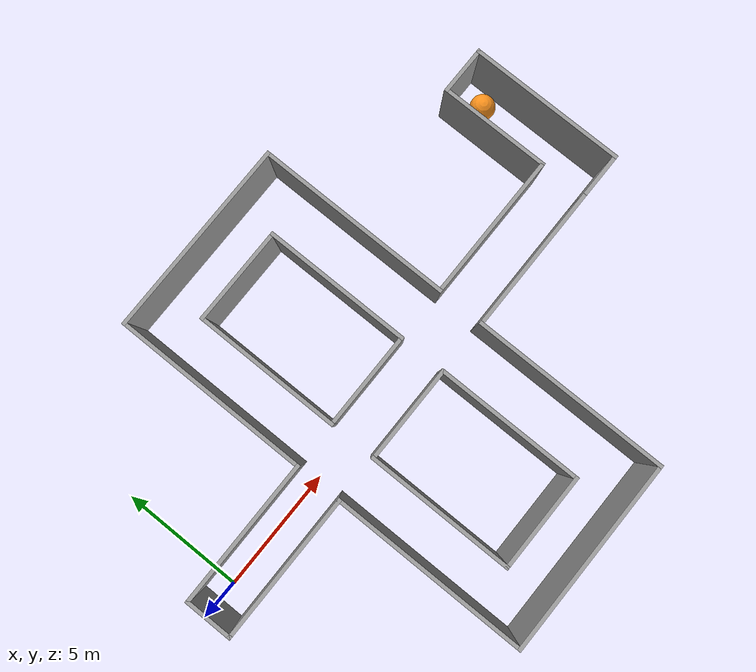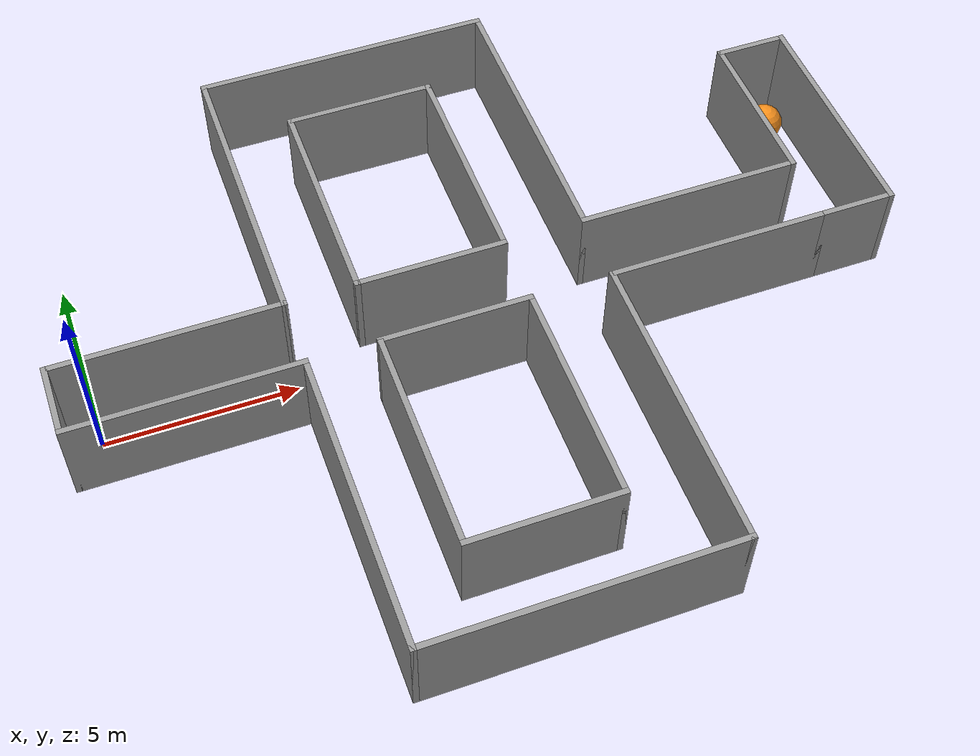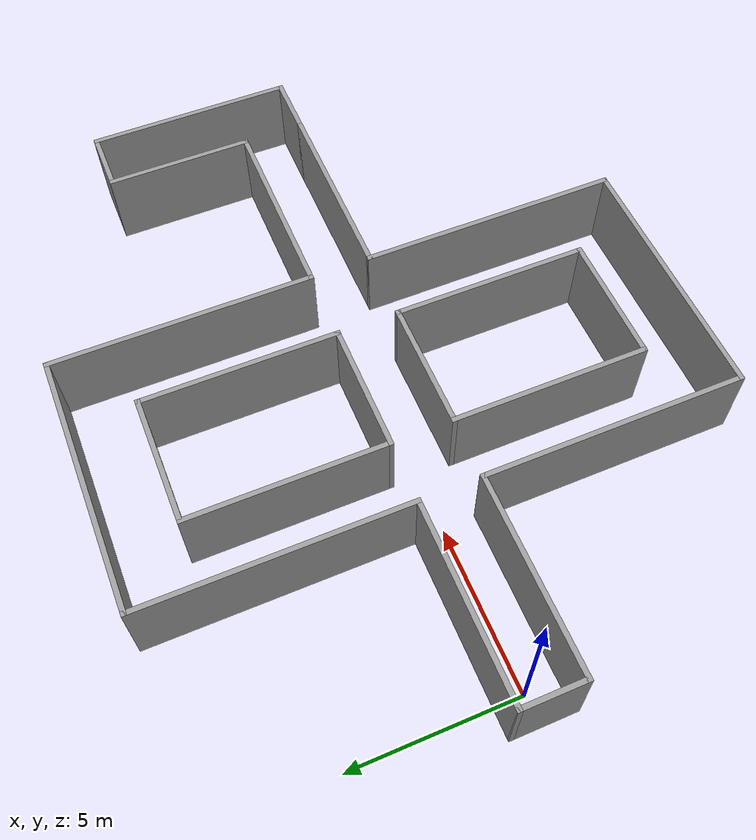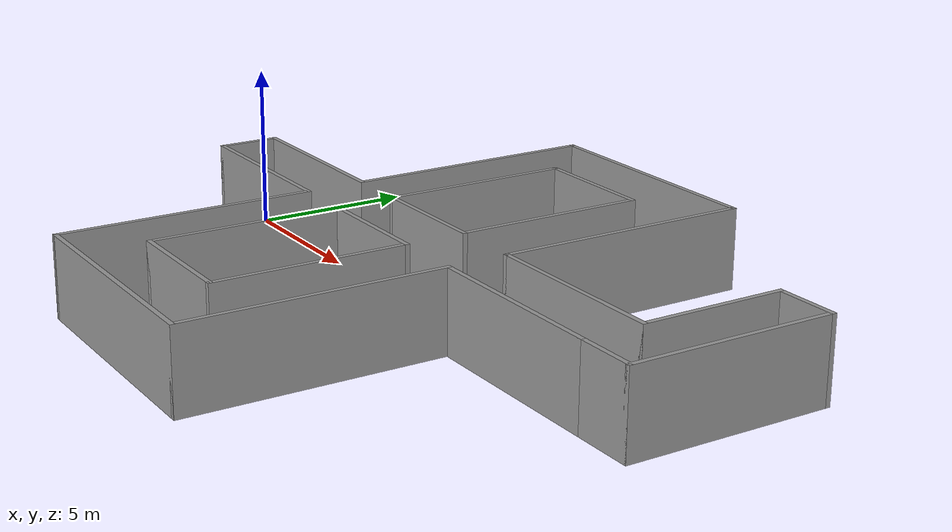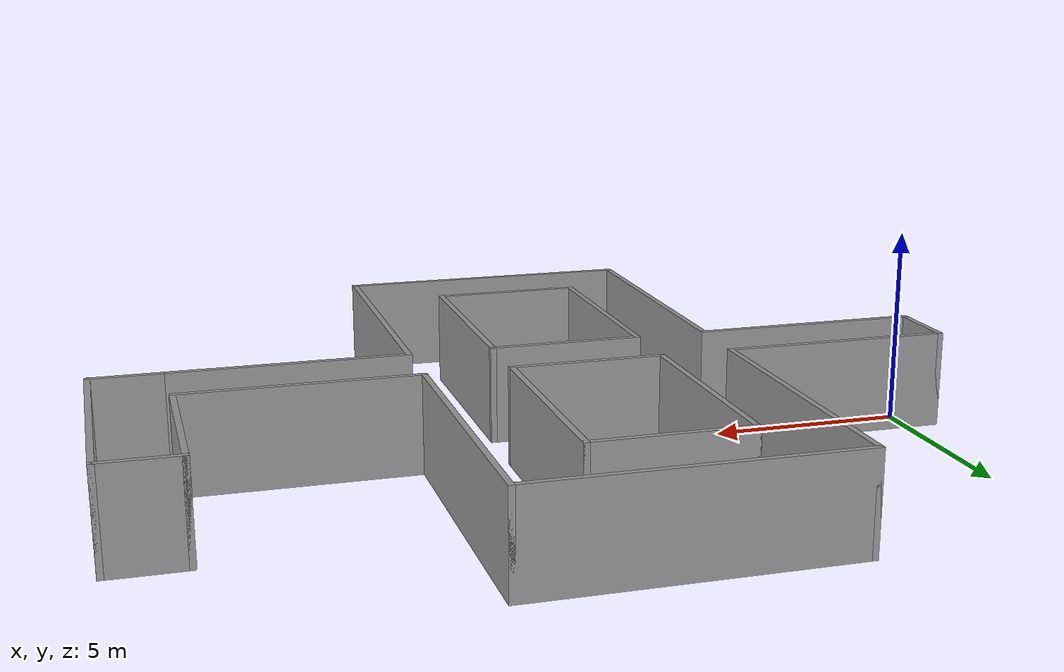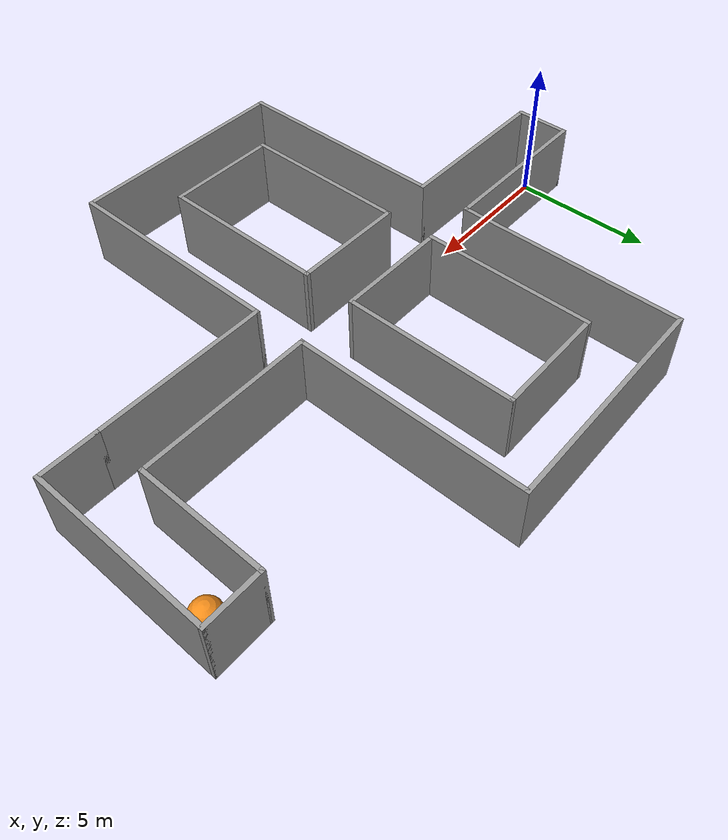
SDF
<sdf version="1.6">
 <world name="default">
  <model name="maze_2">
   <pose>9.89 -0.125 0 0 -0 0</pose>
   <link name="Wall_14">
    <collision name="Wall_14_Collision">
     <geometry><box><size>6 0.15 2.5</size></box></geometry>
     <pose>0 0 1.25 0 -0 0</pose>
    </collision>
    <visual name="Wall_14_Visual">
     <pose>0 0 1.25 0 -0 0</pose>
     <geometry><box><size>6 0.15 2.5</size></box></geometry>
     <material>
      <script><uri>file://media/materials/scripts/gazebo.material</uri><name>Gazebo/Grey</name></script>
      <ambient>1 1 1 1</ambient>
     </material>
    </visual>
    <pose>-7.775 0.925 0 0 -0 0</pose>
   </link>
   <link name="Wall_17">
    <collision name="Wall_17_Collision">
     <geometry><box><size>8 0.15 2.5</size></box></geometry>
     <pose>0 0 1.25 0 -0 0</pose>
    </collision>
    <visual name="Wall_17_Visual">
     <pose>0 0 1.25 0 -0 0</pose>
     <geometry><box><size>8 0.15 2.5</size></box></geometry>
     <material>
      <script><uri>file://media/materials/scripts/gazebo.material</uri><name>Gazebo/Grey</name></script>
      <ambient>1 1 1 1</ambient>
     </material>
    </visual>
    <pose>-4.85 4.85 0 0 -0 1.5708</pose>
   </link>
   <link name="Wall_18">
    <collision name="Wall_18_Collision">
     <geometry><box><size>8 0.15 2.5</size></box></geometry>
     <pose>0 0 1.25 0 -0 0</pose>
    </collision>
    <visual name="Wall_18_Visual">
     <pose>0 0 1.25 0 -0 0</pose>
     <geometry><box><size>8 0.15 2.5</size></box></geometry>
     <material>
      <script><uri>file://media/materials/scripts/gazebo.material</uri><name>Gazebo/Grey</name></script>
      <ambient>1 1 1 1</ambient>
     </material>
    </visual>
    <pose>-0.925 8.775 0 0 -0 0</pose>
   </link>
   <link name="Wall_19">
    <collision name="Wall_19_Collision">
     <geometry><box><size>8 0.15 2.5</size></box></geometry>
     <pose>0 0 1.25 0 -0 0</pose>
    </collision>
    <visual name="Wall_19_Visual">
     <pose>0 0 1.25 0 -0 0</pose>
     <geometry><box><size>8 0.15 2.5</size></box></geometry>
     <material>
      <script><uri>file://media/materials/scripts/gazebo.material</uri><name>Gazebo/Grey</name></script>
      <ambient>1 1 1 1</ambient>
     </material>
    </visual>
    <pose>3 4.85 0 0 0 -1.5708</pose>
   </link>
   <link name="Wall_20">
    <collision name="Wall_20_Collision">
     <geometry><box><size>6 0.15 2.5</size></box></geometry>
     <pose>0 0 1.25 0 -0 0</pose>
    </collision>
    <visual name="Wall_20_Visual">
     <pose>0 0 1.25 0 -0 0</pose>
     <geometry><box><size>6 0.15 2.5</size></box></geometry>
     <material>
      <script><uri>file://media/materials/scripts/gazebo.material</uri><name>Gazebo/Grey</name></script>
      <ambient>1 1 1 1</ambient>
     </material>
    </visual>
    <pose>5.925 0.925 0 0 -0 0</pose>
   </link>
   <link name="Wall_21">
    <collision name="Wall_21_Collision">
     <geometry><box><size>4.5 0.15 2.5</size></box></geometry>
     <pose>0 0 1.25 0 -0 0</pose>
    </collision>
    <visual name="Wall_21_Visual">
     <pose>0 0 1.25 0 -0 0</pose>
     <geometry><box><size>4.5 0.15 2.5</size></box></geometry>
     <material>
      <script><uri>file://media/materials/scripts/gazebo.material</uri><name>Gazebo/Grey</name></script>
      <ambient>1 1 1 1</ambient>
     </material>
    </visual>
    <pose>8.85 3.1 0 0 -0 1.5708</pose>
   </link>
   <link name="Wall_22">
    <collision name="Wall_22_Collision">
     <geometry><box><size>2 0.15 2.5</size></box></geometry>
     <pose>0 0 1.25 0 -0 0</pose>
    </collision>
    <visual name="Wall_22_Visual">
     <pose>0 0 1.25 0 -0 0</pose>
     <geometry><box><size>2 0.15 2.5</size></box></geometry>
     <material>
      <script><uri>file://media/materials/scripts/gazebo.material</uri><name>Gazebo/Grey</name></script>
      <ambient>1 1 1 1</ambient>
     </material>
    </visual>
    <pose>9.775 5.275 0 0 -0 0</pose>
   </link>
   <link name="Wall_30">
    <collision name="Wall_30_Collision">
     <geometry><box><size>2 0.15 2.5</size></box></geometry>
     <pose>0 0 1.25 0 -0 0</pose>
    </collision>
    <visual name="Wall_30_Visual">
     <pose>0 0 1.25 0 -0 0</pose>
     <geometry><box><size>2 0.15 2.5</size></box></geometry>
     <material>
      <script><uri>file://media/materials/scripts/gazebo.material</uri><name>Gazebo/Grey</name></script>
      <ambient>1 1 1 1</ambient>
     </material>
    </visual>
    <pose>-10.7 0 0 0 0 -1.5708</pose>
   </link>
   <link name="Wall_32">
    <collision name="Wall_32_Collision">
     <geometry><box><size>6 0.15 2.5</size></box></geometry>
     <pose>0 0 1.25 0 -0 0</pose>
    </collision>
    <visual name="Wall_32_Visual">
     <pose>0 0 1.25 0 -0 0</pose>
     <geometry><box><size>6 0.15 2.5</size></box></geometry>
     <material>
      <script><uri>file://media/materials/scripts/gazebo.material</uri><name>Gazebo/Grey</name></script>
      <ambient>1 1 1 1</ambient>
     </material>
    </visual>
    <pose>-7.775 -0.925 0 0 -0 0</pose>
   </link>
   <link name="Wall_34">
    <collision name="Wall_34_Collision">
     <geometry><box><size>8 0.15 2.5</size></box></geometry>
     <pose>0 0 1.25 0 -0 0</pose>
    </collision>
    <visual name="Wall_34_Visual">
     <pose>0 0 1.25 0 -0 0</pose>
     <geometry><box><size>8 0.15 2.5</size></box></geometry>
     <material>
      <script><uri>file://media/materials/scripts/gazebo.material</uri><name>Gazebo/Grey</name></script>
      <ambient>1 1 1 1</ambient>
     </material>
    </visual>
    <pose>-4.85 -4.85 0 0 0 -1.5708</pose>
   </link>
   <link name="Wall_36">
    <collision name="Wall_36_Collision">
     <geometry><box><size>8 0.15 2.5</size></box></geometry>
     <pose>0 0 1.25 0 -0 0</pose>
    </collision>
    <visual name="Wall_36_Visual">
     <pose>0 0 1.25 0 -0 0</pose>
     <geometry><box><size>8 0.15 2.5</size></box></geometry>
     <material>
      <script><uri>file://media/materials/scripts/gazebo.material</uri><name>Gazebo/Grey</name></script>
      <ambient>1 1 1 1</ambient>
     </material>
    </visual>
    <pose>-0.925 -8.775 0 0 -0 0</pose>
   </link>
   <link name="Wall_37">
    <collision name="Wall_37_Collision">
     <geometry><box><size>8 0.15 2.5</size></box></geometry>
     <pose>0 0 1.25 0 -0 0</pose>
    </collision>
    <visual name="Wall_37_Visual">
     <pose>0 0 1.25 0 -0 0</pose>
     <geometry><box><size>8 0.15 2.5</size></box></geometry>
     <material>
      <script><uri>file://media/materials/scripts/gazebo.material</uri><name>Gazebo/Grey</name></script>
      <ambient>1 1 1 1</ambient>
     </material>
    </visual>
    <pose>3 -4.85 0 0 -0 1.5708</pose>
   </link>
   <link name="Wall_39">
    <collision name="Wall_39_Collision">
     <geometry><box><size>6 0.15 2.5</size></box></geometry>
     <pose>0 0 1.25 0 -0 0</pose>
    </collision>
    <visual name="Wall_39_Visual">
     <pose>0 0 1.25 0 -0 0</pose>
     <geometry><box><size>6 0.15 2.5</size></box></geometry>
     <material>
      <script><uri>file://media/materials/scripts/gazebo.material</uri><name>Gazebo/Grey</name></script>
      <ambient>1 1 1 1</ambient>
     </material>
    </visual>
    <pose>5.925 -0.925 0 0 -0 0</pose>
   </link>
   <link name="Wall_43">
    <collision name="Wall_43_Collision">
     <geometry><box><size>2 0.15 2.5</size></box></geometry>
     <pose>0 0 1.25 0 -0 0</pose>
    </collision>
    <visual name="Wall_43_Visual">
     <pose>0 0 1.25 0 -0 0</pose>
     <geometry><box><size>2 0.15 2.5</size></box></geometry>
     <material>
      <script><uri>file://media/materials/scripts/gazebo.material</uri><name>Gazebo/Grey</name></script>
      <ambient>1 1 1 1</ambient>
     </material>
    </visual>
    <pose>9.775 -0.925 0 0 -0 0</pose>
   </link>
   <link name="Wall_44">
    <collision name="Wall_44_Collision">
     <geometry><box><size>6.35 0.15 2.5</size></box></geometry>
     <pose>0 0 1.25 0 -0 0</pose>
    </collision>
    <visual name="Wall_44_Visual">
     <pose>0 0 1.25 0 -0 0</pose>
     <geometry><box><size>6.35 0.15 2.5</size></box></geometry>
     <material>
      <script><uri>file://media/materials/scripts/gazebo.material</uri><name>Gazebo/Grey</name></script>
      <ambient>1 1 1 1</ambient>
     </material>
    </visual>
    <pose>10.7 2.175 0 0 -0 1.5708</pose>
   </link>
   <link name="Wall_47">
    <collision name="Wall_47_Collision">
     <geometry><box><size>6 0.15 2.5</size></box></geometry>
     <pose>0 0 1.25 0 -0 0</pose>
    </collision>
    <visual name="Wall_47_Visual">
     <pose>0 0 1.25 0 -0 0</pose>
     <geometry><box><size>6 0.15 2.5</size></box></geometry>
     <material>
      <script><uri>file://media/materials/scripts/gazebo.material</uri><name>Gazebo/Grey</name></script>
      <ambient>1 1 1 1</ambient>
     </material>
    </visual>
    <pose>-3 3.85 0 0 -0 1.5708</pose>
   </link>
   <link name="Wall_48">
    <collision name="Wall_48_Collision">
     <geometry><box><size>4 0.15 2.5</size></box></geometry>
     <pose>0 0 1.25 0 -0 0</pose>
    </collision>
    <visual name="Wall_48_Visual">
     <pose>0 0 1.25 0 -0 0</pose>
     <geometry><box><size>4 0.15 2.5</size></box></geometry>
     <material>
      <script><uri>file://media/materials/scripts/gazebo.material</uri><name>Gazebo/Grey</name></script>
      <ambient>1 1 1 1</ambient>
     </material>
    </visual>
    <pose>-1.075 6.775 0 0 -0 0</pose>
   </link>
   <link name="Wall_49">
    <collision name="Wall_49_Collision">
     <geometry><box><size>6 0.15 2.5</size></box></geometry>
     <pose>0 0 1.25 0 -0 0</pose>
    </collision>
    <visual name="Wall_49_Visual">
     <pose>0 0 1.25 0 -0 0</pose>
     <geometry><box><size>6 0.15 2.5</size></box></geometry>
     <material>
      <script><uri>file://media/materials/scripts/gazebo.material</uri><name>Gazebo/Grey</name></script>
      <ambient>1 1 1 1</ambient>
     </material>
    </visual>
    <pose>0.849999 3.85 0 0 0 -1.5708</pose>
   </link>
   <link name="Wall_50">
    <collision name="Wall_50_Collision">
     <geometry><box><size>4 0.15 2.5</size></box></geometry>
     <pose>0 0 1.25 0 -0 0</pose>
    </collision>
    <visual name="Wall_50_Visual">
     <pose>0 0 1.25 0 -0 0</pose>
     <geometry><box><size>4 0.15 2.5</size></box></geometry>
     <material>
      <script><uri>file://media/materials/scripts/gazebo.material</uri><name>Gazebo/Grey</name></script>
      <ambient>1 1 1 1</ambient>
     </material>
    </visual>
    <pose>-1.075 0.925 0 0 -0 3.14159</pose>
   </link>
   <link name="Wall_53">
    <collision name="Wall_53_Collision">
     <geometry><box><size>6 0.15 2.5</size></box></geometry>
     <pose>0 0 1.25 0 -0 0</pose>
    </collision>
    <visual name="Wall_53_Visual">
     <pose>0 0 1.25 0 -0 0</pose>
     <geometry><box><size>6 0.15 2.5</size></box></geometry>
     <material>
      <script><uri>file://media/materials/scripts/gazebo.material</uri><name>Gazebo/Grey</name></script>
      <ambient>1 1 1 1</ambient>
     </material>
    </visual>
    <pose>-3 -3.85 0 0 0 -1.5708</pose>
   </link>
   <link name="Wall_54">
    <collision name="Wall_54_Collision">
     <geometry><box><size>4 0.15 2.5</size></box></geometry>
     <pose>0 0 1.25 0 -0 0</pose>
    </collision>
    <visual name="Wall_54_Visual">
     <pose>0 0 1.25 0 -0 0</pose>
     <geometry><box><size>4 0.15 2.5</size></box></geometry>
     <material>
      <script><uri>file://media/materials/scripts/gazebo.material</uri><name>Gazebo/Grey</name></script>
      <ambient>1 1 1 1</ambient>
     </material>
    </visual>
    <pose>-1.075 -6.775 0 0 -0 0</pose>
   </link>
   <link name="Wall_55">
    <collision name="Wall_55_Collision">
     <geometry><box><size>6 0.15 2.5</size></box></geometry>
     <pose>0 0 1.25 0 -0 0</pose>
    </collision>
    <visual name="Wall_55_Visual">
     <pose>0 0 1.25 0 -0 0</pose>
     <geometry><box><size>6 0.15 2.5</size></box></geometry>
     <material>
      <script><uri>file://media/materials/scripts/gazebo.material</uri><name>Gazebo/Grey</name></script>
      <ambient>1 1 1 1</ambient>
     </material>
    </visual>
    <pose>0.849999 -3.85 0 0 -0 1.5708</pose>
   </link>
   <link name="Wall_56">
    <collision name="Wall_56_Collision">
     <geometry><box><size>4 0.15 2.5</size></box></geometry>
     <pose>0 0 1.25 0 -0 0</pose>
    </collision>
    <visual name="Wall_56_Visual">
     <pose>0 0 1.25 0 -0 0</pose>
     <geometry><box><size>4 0.15 2.5</size></box></geometry>
     <material>
      <script><uri>file://media/materials/scripts/gazebo.material</uri><name>Gazebo/Grey</name></script>
      <ambient>1 1 1 1</ambient>
     </material>
    </visual>
    <pose>-1.075 -0.925 0 0 -0 3.14159</pose>
   </link>
   <static>1</static>
  </model>
  <model name="my_model_0">
   <pose>19.8229 4.04305 0.495 0 -0 0</pose>
   <link name="balloon_link">
    <inertial>
     <mass>1</mass>
     <inertia><ixx>1</ixx><ixy>0</ixy><ixz>0</ixz><iyy>1</iyy><iyz>0</iyz><izz>1</izz></inertia>
    </inertial>
    <visual name="visual">
     <geometry><sphere><radius>0.5</radius></sphere></geometry>
     <material>
      <script><uri>file://media/materials/scripts/gazebo.material</uri><name>Gazebo/Orange</name></script>
     </material>
    </visual>
    <collision name="collision"><geometry><sphere><radius>0.5</radius></sphere></geometry></collision>
   </link>
  </model>
 </world>
</sdf>
